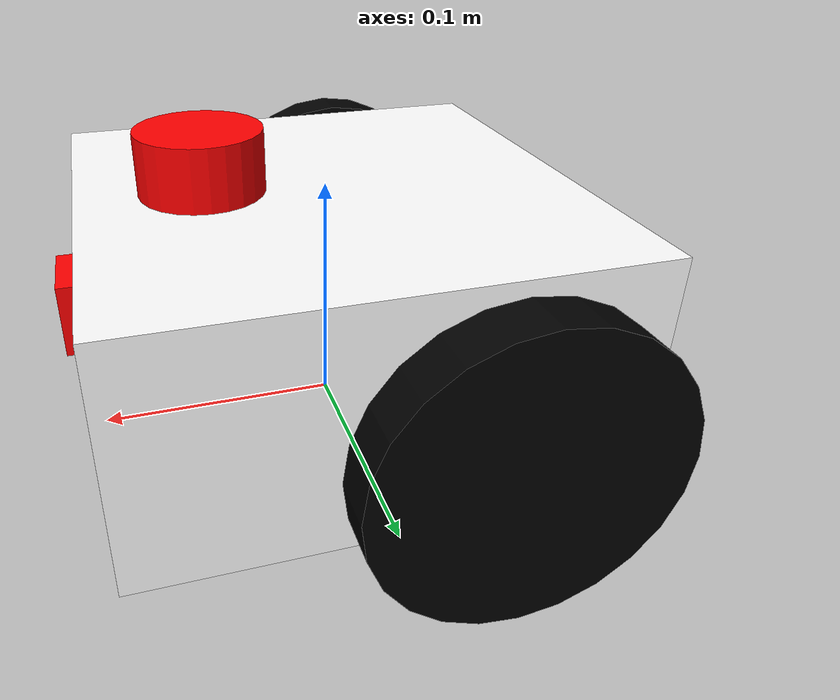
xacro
<?xml version="1.0"?>
<robot xmlns:xacro="http://www.ros.org/wiki/xacro"  name="robot">

    <xacro:include filename="robot_core.xacro" />
    <xacro:include filename="gazebo_control.xacro" />
    <xacro:include filename="lidar.xacro" />
    <xacro:include filename="camera.xacro" />
    <xacro:include filename="ros2_control.xacro" />
</robot>

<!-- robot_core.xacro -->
<robot xmlns:xacro="http://www.ros.org/wiki/xacro"  name="robot">

    <xacro:include filename="inertial_macros.xacro"/>

    <material name="white">
        <color rgba="1 1 1 1"/>
    </material>

    <material name="red">
        <color rgba="1 0 0 1"/>
    </material>

    <material name="black">
        <color rgba="0 0 0 1"/>
    </material>

    <!-- base link -->
    <link name= "base_link">
    </link>

    <!-- chassis -->
    <joint name="chassis_joint" type="fixed">
        <parent link="base_link"/>
        <child link="chassis"/>
        <origin xyz="-0.1 0 0"/>
    </joint>

    <link name="chassis">
        <visual>
            <origin xyz="0.1 0 0.05" rpy="0 0 0"/>
            <geometry>
                <box size="0.2 0.2 0.1"/>
            </geometry>
            <material name="white"/>
        </visual>
        <collision>
            <origin xyz="0.1 0 0.05" rpy="0 0 0"/>
            <geometry>
                <box size="0.2 0.2 0.1"/>
            </geometry>
        </collision>
        <xacro:inertial_box mass="0.5" x="0.2" y="0.2" z="0.1">
        <origin xyz="0.1 0 0.05" rpy="0 0 0"/>
    </xacro:inertial_box>
    </link>
    <gazebo reference="chassis">
        <material>Gazebo/White</material>
    </gazebo>

    <!-- left wheel -->
    <joint name="left_wheel_joint" type="continuous">
     <parent link="base_link"/>
     <child link="left_wheel"/>
     <origin xyz="-0.035 0.12 0.04" rpy="-${pi/2} 0 0"/>
     <axis xyz="0 0 1"/>
    </joint>

    <link name="left_wheel">
      <visual>
        <geometry>
            <cylinder length="0.02" radius="0.06"/>
        </geometry>
        <material name="black"/>
      </visual>
      <collision>
        <geometry>
            <cylinder length="0.02" radius="0.06"/>
        </geometry>
      </collision>
      <xacro:inertial_cylinder mass="0.1" length="0.02" radius="0.06">
        <origin xyz="0 0 0" rpy="0 0 0"/>
       </xacro:inertial_cylinder>
    </link>
    <gazebo reference="left_wheel">
        <material>Gazebo/Black</material>
    </gazebo>

    <!-- right wheel -->
    <joint name="right_wheel_joint" type="continuous">
        <parent link="base_link"/>
        <child link="right_wheel"/>
        <origin xyz="-0.035 -0.12 0.04" rpy="-${pi/2} 0 0"/>
        <axis xyz="0 0 1"/>
       </joint>

       <link name="right_wheel">
         <visual>
           <geometry>
               <cylinder length="0.02" radius="0.06"/>
           </geometry>
           <material name="black"/>
         </visual>
         <collision>
            <geometry>
                <cylinder length="0.02" radius="0.06"/>
            </geometry>
        </collision>
        <xacro:inertial_cylinder mass="0.1" length="0.02" radius="0.06">
            <origin xyz="0 0 0" rpy="0 0 0"/>
        </xacro:inertial_cylinder>
       </link>
       <gazebo reference="right_wheel">
        <material>Gazebo/Black</material>
       </gazebo>

       <!-- caster wheel -->
   <joint name="caster_wheel_joint" type="fixed">
    <parent link="chassis"/>
    <child link="caster_wheel"/>
    <origin xyz="0.16 0 0" rpy="0 0 0"/>
   </joint>

  <link name="caster_wheel">
    <visual>
        <geometry>
            <sphere radius="0.021"/>
        </geometry>
        <material name="black"/>
    </visual>
    <collision>
        <geometry>
            <sphere radius="0.021"/>
        </geometry>
    </collision>
    <xacro:inertial_sphere mass="0.1" radius="0.021">
        <origin xyz="0 0 0" rpy="0 0 0"/>
    </xacro:inertial_sphere>
  </link>
  <gazebo reference="caster_wheel">
    <material>Gazebo/Black</material>
    <mu1 value="0.001"/>
    <mu2 value="0.001"/>
   </gazebo>
</robot>

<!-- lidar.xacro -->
<robot xmlns:xacro="http://www.ros.org/wiki/xacro" >

    <joint name="laser_joint" type="fixed">
        <parent link="chassis"/>
        <child link="laser_frame"/>
        <origin xyz="0.15 0 0.115" rpy="0 0 0"/>
    </joint>

    <link name="laser_frame">
            <visual>
                <geometry>
                    <cylinder radius="0.025" length="0.025"/>
                </geometry>
                <material name="red"/>
            </visual>
            <collision>
                <geometry>
                    <cylinder radius="0.025" length="0.025"/>
                </geometry>
            </collision>
            <xacro:inertial_cylinder mass="0.1" length="0.025" radius="0.025">
                <origin xyz="0 0 0" rpy="0 0 0"/>
            </xacro:inertial_cylinder>
    </link>

    <gazebo reference="laser_frame">
        <material>Gazebo/Red</material>

        .<sensor name="laser" type="ray">
            <pose> 0 0 0 0 0 0 </pose>
            <visualize>true</visualize>
            <update_rate>10</update_rate>
            <ray>
                <scan>
                    <horizontal>
                        <samples>360</samples>
                        <min_angle>-3.14</min_angle>
                        <max_angle>3.14</max_angle>
                    </horizontal>
                </scan>
                <range>
                    <min>0.3</min>
                    <max>12</max>
                </range>
            </ray>
            <plugin name="laser_controller" filename="libgazebo_ros_ray_sensor.so">
                <ros>
                    <argument>~/out:=scan</argument>
                </ros>
                <output_type>sensor_msgs/LaserScan</output_type>
                <frame_name>laser_frame</frame_name>
            </plugin>
        </sensor>
    </gazebo>

</robot>

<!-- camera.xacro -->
<robot xmlns:xacro="http://www.ros.org/wiki/xacro" >

    <joint name="camera_joint" type="fixed">
        <parent link="chassis"/>
        <child link="camera_link"/>
        <origin xyz="0.205 0 0.06" rpy="0 0 0"/>
    </joint>

    <link name="camera_link">
        <visual>
            <geometry>
                <box size="0.010 0.03 0.03"/>
            </geometry>
            <material name="red"/>
        </visual>
    </link>

    <joint name="camera_optical_joint" type="fixed">
        <parent link="camera_link"/>
        <child link="camera_link_optical"/>
        <origin xyz="0 0 0" rpy="${-pi/2} 0 ${-pi/2}"/>
    </joint>

    <link name="camera_link_optical"></link>

    <gazebo reference="camera_link">
        <material>Gazebo/Red</material>

        <sensor name="camera" type="camera">
            <pose> 0 0 0 0 0 0 </pose>
            <visualize>true</visualize>
            <update_rate>10</update_rate>
            <camera>
                <horizontal_fov>1.089</horizontal_fov>
                <image>
                    <format>R8G8B8</format>
                    <width>640</width>
                    <height>480</height>
                </image>
                <clip>
                    <near>0.05</near>
                    <far>8.0</far>
                </clip>
            </camera>
            <plugin name="camera_controller" filename="libgazebo_ros_camera.so">
                <frame_name>camera_link_optical</frame_name>
            </plugin>
        </sensor>
    </gazebo>

</robot>
